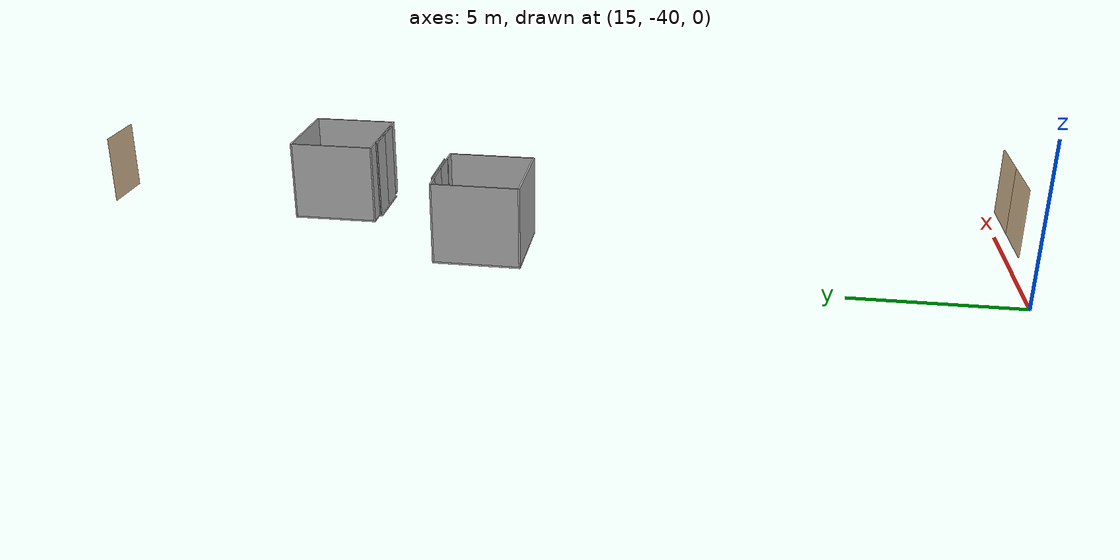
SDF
<sdf version="1.7">
 <world name="world">
  <scene><ambient>0.8 0.8 0.8 1.0</ambient><background>0 0 0</background><grid>false</grid></scene>
  <include><uri>model://sun</uri></include>
  <model name="L1_door3">
   <pose>20.334155710474544 -40.40725483879361 0.0 0 0 -3.137402798278724</pose>
   <link name="right">
    <pose>0.9069965354571369 0 1.11 0 0 0</pose>
    <visual name="right_visual">
     <geometry><box><size>1.8039930709142737 0.03 2.2</size></box></geometry>
     <material><ambient>0.5 0.25 0 0.6</ambient><diffuse>0.5 0.25 0 0.6</diffuse></material>
    </visual>
    <collision name="right_collision">
     <geometry><box><size>1.8039930709142737 0.03 2.2</size></box></geometry>
     <surface><contact><collide_bitmask>0x02</collide_bitmask></contact></surface>
    </collision>
    <inertial>
     <mass>50.0</mass>
     <inertia><ixx>20.17041666666667</ixx><iyy>33.726629166277974</iyy><izz>13.563712499611302</izz></inertia>
    </inertial>
   </link>
   <joint name="right_joint" type="prismatic">
    <parent>world</parent>
    <child>right</child>
    <axis>
     <xyz>1 0 0</xyz>
     <limit><lower>0.0</lower><upper>1.8139930709142738</upper><effort>500.0</effort></limit>
    </axis>
   </joint>
   <link name="left">
    <pose>-0.9069965354571369 0 1.11 0 0 0</pose>
    <visual name="left_visual">
     <geometry><box><size>1.8039930709142737 0.03 2.2</size></box></geometry>
     <material><ambient>0.5 0.25 0 0.6</ambient><diffuse>0.5 0.25 0 0.6</diffuse></material>
    </visual>
    <collision name="left_collision">
     <geometry><box><size>1.8039930709142737 0.03 2.2</size></box></geometry>
     <surface><contact><collide_bitmask>0x02</collide_bitmask></contact></surface>
    </collision>
    <inertial>
     <mass>50.0</mass>
     <inertia><ixx>20.17041666666667</ixx><iyy>33.726629166277974</iyy><izz>13.563712499611302</izz></inertia>
    </inertial>
   </link>
   <joint name="left_joint" type="prismatic">
    <parent>world</parent>
    <child>left</child>
    <axis>
     <xyz>1 0 0</xyz>
     <limit><lower>-1.8139930709142738</lower><upper>0.0</upper><effort>500.0</effort></limit>
    </axis>
   </joint>
   <plugin name="door" filename="libdoor.so">
    <v_max_door>0.2</v_max_door>
    <a_max_door>0.2</a_max_door>
    <a_nom_door>0.08</a_nom_door>
    <dx_min_door>0.001</dx_min_door>
    <f_max_door>100.0</f_max_door>
    <door name="L1_door3" type="DoubleSlidingDoor" left_joint_name="left_joint" right_joint_name="right_joint"/>
   </plugin>
  </model>
  <model name="L1_door4">
   <pose>19.549120677562087 -11.10939551168469 0.0 0 0 -0.009497018345977264</pose>
   <link name="right">
    <pose>0 0 1.11 0 0 0</pose>
    <visual name="right_visual">
     <geometry><box><size>1.5905993122484277 0.03 2.2</size></box></geometry>
     <material><ambient>0.5 0.25 0 0.6</ambient><diffuse>0.5 0.25 0 0.6</diffuse></material>
    </visual>
    <collision name="right_collision">
     <geometry><box><size>1.5905993122484277 0.03 2.2</size></box></geometry>
     <surface><contact><collide_bitmask>0x02</collide_bitmask></contact></surface>
    </collision>
    <inertial>
     <mass>50.0</mass>
     <inertia><ixx>20.17041666666667</ixx><iyy>30.70835905052155</iyy><izz>10.545442383854882</izz></inertia>
    </inertial>
   </link>
   <joint name="right_joint" type="revolute">
    <parent>world</parent>
    <child>right</child>
    <axis><xyz>0 0 1</xyz><limit><lower>0</lower><upper>1.57</upper></limit></axis>
    <pose>0.8002996561242138 0 0 0 0 0</pose>
   </joint>
   <plugin name="door" filename="libdoor.so">
    <v_max_door>0.5</v_max_door>
    <a_max_door>0.3</a_max_door>
    <a_nom_door>0.15</a_nom_door>
    <dx_min_door>0.01</dx_min_door>
    <f_max_door>500.0</f_max_door>
    <door name="L1_door4" type="SwingDoor" left_joint_name="empty_joint" right_joint_name="right_joint"/>
   </plugin>
  </model>
  <model name="ShaftDoor_Lift1_L1_lift1_door">
   <pose>19.766468308668816 -20.331265422387034 0.0 0 0 0.0</pose>
   <link name="right_door">
    <pose>0.425 0 1.25 0 0 0</pose>
    <visual name="right_door_visual">
     <geometry><box><size>0.85 0.03 2.5</size></box></geometry>
     <material>
      <ambient>0.5 0.5 0.5 1</ambient>
      <diffuse>0.7 0.7 0.7 1</diffuse>
      <specular>0.6 0.6 0.6 1</specular>
      <emissive>0.1 0.1 0.1 1</emissive>
     </material>
    </visual>
    <collision name="right_door_collision">
     <geometry><box><size>0.85 0.03 2.5</size></box></geometry>
     <surface><contact><collide_bitmask>0x02</collide_bitmask></contact></surface>
    </collision>
   </link>
   <joint name="right_joint" type="prismatic">
    <parent>world</parent>
    <child>right_door</child>
    <axis><xyz>1 0 0</xyz><limit><lower>0</lower><upper>0.85</upper></limit></axis>
   </joint>
   <link name="left_door">
    <pose>-0.425 0 1.25 0 0 0</pose>
    <visual name="left_door_visual">
     <geometry><box><size>0.85 0.03 2.5</size></box></geometry>
     <material>
      <ambient>0.5 0.5 0.5 1</ambient>
      <diffuse>0.7 0.7 0.7 1</diffuse>
      <specular>0.6 0.6 0.6 1</specular>
      <emissive>0.1 0.1 0.1 1</emissive>
     </material>
    </visual>
    <collision name="left_door_collision">
     <geometry><box><size>0.85 0.03 2.5</size></box></geometry>
     <surface><contact><collide_bitmask>0x02</collide_bitmask></contact></surface>
    </collision>
   </link>
   <joint name="left_joint" type="prismatic">
    <parent>world</parent>
    <child>left_door</child>
    <axis><xyz>1 0 0</xyz><limit><lower>-0.85</lower><upper>0</upper></limit></axis>
   </joint>
   <link name="ramp">
    <pose>0 0 -0.025 0 0 0</pose>
    <visual name="ramp_visual">
     <geometry><box><size>1.7 0.1 0.05</size></box></geometry>
     <material>
      <ambient>0.5 0.5 0.5 1</ambient>
      <diffuse>0.7 0.7 0.7 1</diffuse>
      <specular>0.6 0.6 0.6 1</specular>
      <emissive>0.1 0.1 0.1 1</emissive>
     </material>
    </visual>
    <collision name="ramp_collision">
     <geometry><box><size>1.7 0.1 0.05</size></box></geometry>
     <surface><contact><collide_bitmask>0x02</collide_bitmask></contact></surface>
    </collision>
   </link>
   <joint name="ramp_joint" type="fixed"><parent>world</parent><child>ramp</child></joint>
   <plugin name="door" filename="libdoor.so">
    <v_max_door>0.3</v_max_door>
    <a_max_door>0.2</a_max_door>
    <a_nom_door>0.1</a_nom_door>
    <dx_min_door>0.0001</dx_min_door>
    <f_max_door>35.0</f_max_door>
    <door left_joint_name="left_joint" name="ShaftDoor_Lift1_L1_lift1_door" right_joint_name="right_joint" type="DoubleSlidingDoor"/>
   </plugin>
  </model>
  <model name="Lift1">
   <link name="platform">
    <inertial>
     <mass>1200</mass>
     <inertia><ixx>729.2500000000001</ixx><iyy>729.2500000000001</iyy><izz>1458.0000000000002</izz></inertia>
    </inertial>
    <visual name="floor_visual">
     <pose>0 0 -0.025 0 0 0</pose>
     <geometry><box><size>2.7 2.7 0.05</size></box></geometry>
     <material>
      <ambient>0.5 0.5 0.5 1</ambient>
      <diffuse>0.7 0.7 0.7 1</diffuse>
      <specular>0.6 0.6 0.6 1</specular>
      <emissive>0.1 0.1 0.1 1</emissive>
     </material>
    </visual>
    <collision name="floor_collision">
     <pose>0 0 -0.025 0 0 0</pose>
     <geometry><box><size>2.7 2.7 0.05</size></box></geometry>
     <surface><contact><collide_bitmask>0x01</collide_bitmask></contact></surface>
    </collision>
    <visual name="frontwall1_visual">
     <pose>0.0 1.3250000000000002 1.25 0 0 0</pose>
     <geometry><box><size>2.7 0.05 2.5</size></box></geometry>
     <material>
      <ambient>0.5 0.5 0.5 1</ambient>
      <diffuse>0.7 0.7 0.7 1</diffuse>
      <specular>0.6 0.6 0.6 1</specular>
      <emissive>0.1 0.1 0.1 1</emissive>
     </material>
    </visual>
    <collision name="frontwall1_collision">
     <pose>0.0 1.3250000000000002 1.25 0 0 0</pose>
     <geometry><box><size>2.7 0.05 2.5</size></box></geometry>
     <surface><contact><collide_bitmask>0x01</collide_bitmask></contact></surface>
    </collision>
    <visual name="backwall1_visual">
     <pose>-1.1 -1.3250000000000002 1.25 0 0 0</pose>
     <geometry><box><size>0.5000000000000001 0.05 2.5</size></box></geometry>
     <material>
      <ambient>0.5 0.5 0.5 1</ambient>
      <diffuse>0.7 0.7 0.7 1</diffuse>
      <specular>0.6 0.6 0.6 1</specular>
      <emissive>0.1 0.1 0.1 1</emissive>
     </material>
    </visual>
    <collision name="backwall1_collision">
     <pose>-1.1 -1.3250000000000002 1.25 0 0 0</pose>
     <geometry><box><size>0.5000000000000001 0.05 2.5</size></box></geometry>
     <surface><contact><collide_bitmask>0x01</collide_bitmask></contact></surface>
    </collision>
    <visual name="backwall2_visual">
     <pose>1.1 -1.3250000000000002 1.25 0 0 0</pose>
     <geometry><box><size>0.5000000000000001 0.05 2.5</size></box></geometry>
     <material>
      <ambient>0.5 0.5 0.5 1</ambient>
      <diffuse>0.7 0.7 0.7 1</diffuse>
      <specular>0.6 0.6 0.6 1</specular>
      <emissive>0.1 0.1 0.1 1</emissive>
     </material>
    </visual>
    <collision name="backwall2_collision">
     <pose>1.1 -1.3250000000000002 1.25 0 0 0</pose>
     <geometry><box><size>0.5000000000000001 0.05 2.5</size></box></geometry>
     <surface><contact><collide_bitmask>0x01</collide_bitmask></contact></surface>
    </collision>
    <visual name="leftwall1_visual">
     <pose>-1.3250000000000002 0.0 1.25 0 0 1.5707963267948966</pose>
     <geometry><box><size>2.6 0.05 2.5</size></box></geometry>
     <material>
      <ambient>0.5 0.5 0.5 1</ambient>
      <diffuse>0.7 0.7 0.7 1</diffuse>
      <specular>0.6 0.6 0.6 1</specular>
      <emissive>0.1 0.1 0.1 1</emissive>
     </material>
    </visual>
    <collision name="leftwall1_collision">
     <pose>-1.3250000000000002 0.0 1.25 0 0 1.5707963267948966</pose>
     <geometry><box><size>2.6 0.05 2.5</size></box></geometry>
     <surface><contact><collide_bitmask>0x01</collide_bitmask></contact></surface>
    </collision>
    <visual name="rightwall1_visual">
     <pose>1.3250000000000002 0.0 1.25 0 0 1.5707963267948966</pose>
     <geometry><box><size>2.6 0.05 2.5</size></box></geometry>
     <material>
      <ambient>0.5 0.5 0.5 1</ambient>
      <diffuse>0.7 0.7 0.7 1</diffuse>
      <specular>0.6 0.6 0.6 1</specular>
      <emissive>0.1 0.1 0.1 1</emissive>
     </material>
    </visual>
    <collision name="rightwall1_collision">
     <pose>1.3250000000000002 0.0 1.25 0 0 1.5707963267948966</pose>
     <geometry><box><size>2.6 0.05 2.5</size></box></geometry>
     <surface><contact><collide_bitmask>0x01</collide_bitmask></contact></surface>
    </collision>
   </link>
   <joint name="cabin_joint" type="prismatic">
    <parent>world</parent>
    <child>platform</child>
    <axis><xyz>0 0 1</xyz></axis>
   </joint>
   <model name="CabinDoor_Lift1_lift1_door">
    <pose>0.0 -1.3250000000000002 0 0 0 0.0</pose>
    <link name="right_door">
     <pose>0.425 0 1.25 0 0 0</pose>
     <visual name="right_door_visual">
      <geometry><box><size>0.85 0.03 2.5</size></box></geometry>
      <material>
       <ambient>0.5 0.5 0.5 1</ambient>
       <diffuse>0.7 0.7 0.7 1</diffuse>
       <specular>0.6 0.6 0.6 1</specular>
       <emissive>0.1 0.1 0.1 1</emissive>
      </material>
     </visual>
     <collision name="right_door_collision">
      <geometry><box><size>0.85 0.03 2.5</size></box></geometry>
      <surface><contact><collide_bitmask>0x02</collide_bitmask></contact></surface>
     </collision>
    </link>
    <joint name="right_joint" type="prismatic">
     <parent>platform</parent>
     <child>right_door</child>
     <axis><xyz>1 0 0</xyz><limit><lower>0</lower><upper>0.85</upper></limit></axis>
    </joint>
    <link name="left_door">
     <pose>-0.425 0 1.25 0 0 0</pose>
     <visual name="left_door_visual">
      <geometry><box><size>0.85 0.03 2.5</size></box></geometry>
      <material>
       <ambient>0.5 0.5 0.5 1</ambient>
       <diffuse>0.7 0.7 0.7 1</diffuse>
       <specular>0.6 0.6 0.6 1</specular>
       <emissive>0.1 0.1 0.1 1</emissive>
      </material>
     </visual>
     <collision name="left_door_collision">
      <geometry><box><size>0.85 0.03 2.5</size></box></geometry>
      <surface><contact><collide_bitmask>0x02</collide_bitmask></contact></surface>
     </collision>
    </link>
    <joint name="left_joint" type="prismatic">
     <parent>platform</parent>
     <child>left_door</child>
     <axis><xyz>1 0 0</xyz><limit><lower>-0.85</lower><upper>0</upper></limit></axis>
    </joint>
    <plugin name="door" filename="libdoor.so">
     <v_max_door>0.3</v_max_door>
     <a_max_door>0.2</a_max_door>
     <a_nom_door>0.1</a_nom_door>
     <dx_min_door>0.0001</dx_min_door>
     <f_max_door>35.0</f_max_door>
     <door left_joint_name="left_joint" name="CabinDoor_Lift1_lift1_door" right_joint_name="right_joint" type="DoubleSlidingDoor"/>
    </plugin>
   </model>
   <plugin name="lift" filename="liblift.so">
    <lift_name>Lift1</lift_name>
    <floor name="L1" elevation="0.0">
     <door_pair cabin_door="CabinDoor_Lift1_lift1_door" shaft_door="ShaftDoor_Lift1_L1_lift1_door"/>
    </floor>
    <initial_floor>L1</initial_floor>
    <v_max_cabin>2.0</v_max_cabin>
    <a_max_cabin>1.2</a_max_cabin>
    <a_nom_cabin>1.0</a_nom_cabin>
    <dx_min_cabin>0.001</dx_min_cabin>
    <f_max_cabin>25323.0</f_max_cabin>
    <cabin_joint_name>cabin_joint</cabin_joint_name>
   </plugin>
   <pose>19.766468308668816 -18.931265422387035 0 0 0 0.0</pose>
  </model>
  <model name="ShaftDoor_Lift2_L1_lift2_door">
   <pose>16.982458687729547 -22.82088370217165 0.0 0 0 0.0</pose>
   <link name="right_door">
    <pose>0.425 0 1.25 0 0 0</pose>
    <visual name="right_door_visual">
     <geometry><box><size>0.85 0.03 2.5</size></box></geometry>
     <material>
      <ambient>0.5 0.5 0.5 1</ambient>
      <diffuse>0.7 0.7 0.7 1</diffuse>
      <specular>0.6 0.6 0.6 1</specular>
      <emissive>0.1 0.1 0.1 1</emissive>
     </material>
    </visual>
    <collision name="right_door_collision">
     <geometry><box><size>0.85 0.03 2.5</size></box></geometry>
     <surface><contact><collide_bitmask>0x02</collide_bitmask></contact></surface>
    </collision>
   </link>
   <joint name="right_joint" type="prismatic">
    <parent>world</parent>
    <child>right_door</child>
    <axis><xyz>1 0 0</xyz><limit><lower>0</lower><upper>0.85</upper></limit></axis>
   </joint>
   <link name="left_door">
    <pose>-0.425 0 1.25 0 0 0</pose>
    <visual name="left_door_visual">
     <geometry><box><size>0.85 0.03 2.5</size></box></geometry>
     <material>
      <ambient>0.5 0.5 0.5 1</ambient>
      <diffuse>0.7 0.7 0.7 1</diffuse>
      <specular>0.6 0.6 0.6 1</specular>
      <emissive>0.1 0.1 0.1 1</emissive>
     </material>
    </visual>
    <collision name="left_door_collision">
     <geometry><box><size>0.85 0.03 2.5</size></box></geometry>
     <surface><contact><collide_bitmask>0x02</collide_bitmask></contact></surface>
    </collision>
   </link>
   <joint name="left_joint" type="prismatic">
    <parent>world</parent>
    <child>left_door</child>
    <axis><xyz>1 0 0</xyz><limit><lower>-0.85</lower><upper>0</upper></limit></axis>
   </joint>
   <link name="ramp">
    <pose>0 0 -0.025 0 0 0</pose>
    <visual name="ramp_visual">
     <geometry><box><size>1.7 0.1 0.05</size></box></geometry>
     <material>
      <ambient>0.5 0.5 0.5 1</ambient>
      <diffuse>0.7 0.7 0.7 1</diffuse>
      <specular>0.6 0.6 0.6 1</specular>
      <emissive>0.1 0.1 0.1 1</emissive>
     </material>
    </visual>
    <collision name="ramp_collision">
     <geometry><box><size>1.7 0.1 0.05</size></box></geometry>
     <surface><contact><collide_bitmask>0x02</collide_bitmask></contact></surface>
    </collision>
   </link>
   <joint name="ramp_joint" type="fixed"><parent>world</parent><child>ramp</child></joint>
   <plugin name="door" filename="libdoor.so">
    <v_max_door>0.3</v_max_door>
    <a_max_door>0.2</a_max_door>
    <a_nom_door>0.1</a_nom_door>
    <dx_min_door>0.0001</dx_min_door>
    <f_max_door>35.0</f_max_door>
    <door left_joint_name="left_joint" name="ShaftDoor_Lift2_L1_lift2_door" right_joint_name="right_joint" type="DoubleSlidingDoor"/>
   </plugin>
  </model>
  <model name="Lift2">
   <link name="platform">
    <inertial>
     <mass>1200</mass>
     <inertia><ixx>729.2500000000001</ixx><iyy>729.2500000000001</iyy><izz>1458.0000000000002</izz></inertia>
    </inertial>
    <visual name="floor_visual">
     <pose>0 0 -0.025 0 0 0</pose>
     <geometry><box><size>2.7 2.7 0.05</size></box></geometry>
     <material>
      <ambient>0.5 0.5 0.5 1</ambient>
      <diffuse>0.7 0.7 0.7 1</diffuse>
      <specular>0.6 0.6 0.6 1</specular>
      <emissive>0.1 0.1 0.1 1</emissive>
     </material>
    </visual>
    <collision name="floor_collision">
     <pose>0 0 -0.025 0 0 0</pose>
     <geometry><box><size>2.7 2.7 0.05</size></box></geometry>
     <surface><contact><collide_bitmask>0x01</collide_bitmask></contact></surface>
    </collision>
    <visual name="frontwall1_visual">
     <pose>-1.1 1.3250000000000002 1.25 0 0 0</pose>
     <geometry><box><size>0.5000000000000001 0.05 2.5</size></box></geometry>
     <material>
      <ambient>0.5 0.5 0.5 1</ambient>
      <diffuse>0.7 0.7 0.7 1</diffuse>
      <specular>0.6 0.6 0.6 1</specular>
      <emissive>0.1 0.1 0.1 1</emissive>
     </material>
    </visual>
    <collision name="frontwall1_collision">
     <pose>-1.1 1.3250000000000002 1.25 0 0 0</pose>
     <geometry><box><size>0.5000000000000001 0.05 2.5</size></box></geometry>
     <surface><contact><collide_bitmask>0x01</collide_bitmask></contact></surface>
    </collision>
    <visual name="frontwall2_visual">
     <pose>1.1 1.3250000000000002 1.25 0 0 0</pose>
     <geometry><box><size>0.5000000000000001 0.05 2.5</size></box></geometry>
     <material>
      <ambient>0.5 0.5 0.5 1</ambient>
      <diffuse>0.7 0.7 0.7 1</diffuse>
      <specular>0.6 0.6 0.6 1</specular>
      <emissive>0.1 0.1 0.1 1</emissive>
     </material>
    </visual>
    <collision name="frontwall2_collision">
     <pose>1.1 1.3250000000000002 1.25 0 0 0</pose>
     <geometry><box><size>0.5000000000000001 0.05 2.5</size></box></geometry>
     <surface><contact><collide_bitmask>0x01</collide_bitmask></contact></surface>
    </collision>
    <visual name="backwall1_visual">
     <pose>0.0 -1.3250000000000002 1.25 0 0 0</pose>
     <geometry><box><size>2.7 0.05 2.5</size></box></geometry>
     <material>
      <ambient>0.5 0.5 0.5 1</ambient>
      <diffuse>0.7 0.7 0.7 1</diffuse>
      <specular>0.6 0.6 0.6 1</specular>
      <emissive>0.1 0.1 0.1 1</emissive>
     </material>
    </visual>
    <collision name="backwall1_collision">
     <pose>0.0 -1.3250000000000002 1.25 0 0 0</pose>
     <geometry><box><size>2.7 0.05 2.5</size></box></geometry>
     <surface><contact><collide_bitmask>0x01</collide_bitmask></contact></surface>
    </collision>
    <visual name="leftwall1_visual">
     <pose>-1.3250000000000002 0.0 1.25 0 0 1.5707963267948966</pose>
     <geometry><box><size>2.6 0.05 2.5</size></box></geometry>
     <material>
      <ambient>0.5 0.5 0.5 1</ambient>
      <diffuse>0.7 0.7 0.7 1</diffuse>
      <specular>0.6 0.6 0.6 1</specular>
      <emissive>0.1 0.1 0.1 1</emissive>
     </material>
    </visual>
    <collision name="leftwall1_collision">
     <pose>-1.3250000000000002 0.0 1.25 0 0 1.5707963267948966</pose>
     <geometry><box><size>2.6 0.05 2.5</size></box></geometry>
     <surface><contact><collide_bitmask>0x01</collide_bitmask></contact></surface>
    </collision>
    <visual name="rightwall1_visual">
     <pose>1.3250000000000002 0.0 1.25 0 0 1.5707963267948966</pose>
     <geometry><box><size>2.6 0.05 2.5</size></box></geometry>
     <material>
      <ambient>0.5 0.5 0.5 1</ambient>
      <diffuse>0.7 0.7 0.7 1</diffuse>
      <specular>0.6 0.6 0.6 1</specular>
      <emissive>0.1 0.1 0.1 1</emissive>
     </material>
    </visual>
    <collision name="rightwall1_collision">
     <pose>1.3250000000000002 0.0 1.25 0 0 1.5707963267948966</pose>
     <geometry><box><size>2.6 0.05 2.5</size></box></geometry>
     <surface><contact><collide_bitmask>0x01</collide_bitmask></contact></surface>
    </collision>
   </link>
   <joint name="cabin_joint" type="prismatic">
    <parent>world</parent>
    <child>platform</child>
    <axis><xyz>0 0 1</xyz></axis>
   </joint>
   <model name="CabinDoor_Lift2_lift2_door">
    <pose>0.0 1.3250000000000002 0 0 0 0.0</pose>
    <link name="right_door">
     <pose>0.425 0 1.25 0 0 0</pose>
     <visual name="right_door_visual">
      <geometry><box><size>0.85 0.03 2.5</size></box></geometry>
      <material>
       <ambient>0.5 0.5 0.5 1</ambient>
       <diffuse>0.7 0.7 0.7 1</diffuse>
       <specular>0.6 0.6 0.6 1</specular>
       <emissive>0.1 0.1 0.1 1</emissive>
      </material>
     </visual>
     <collision name="right_door_collision">
      <geometry><box><size>0.85 0.03 2.5</size></box></geometry>
      <surface><contact><collide_bitmask>0x02</collide_bitmask></contact></surface>
     </collision>
    </link>
    <joint name="right_joint" type="prismatic">
     <parent>platform</parent>
     <child>right_door</child>
     <axis><xyz>1 0 0</xyz><limit><lower>0</lower><upper>0.85</upper></limit></axis>
    </joint>
    <link name="left_door">
     <pose>-0.425 0 1.25 0 0 0</pose>
     <visual name="left_door_visual">
      <geometry><box><size>0.85 0.03 2.5</size></box></geometry>
      <material>
       <ambient>0.5 0.5 0.5 1</ambient>
       <diffuse>0.7 0.7 0.7 1</diffuse>
       <specular>0.6 0.6 0.6 1</specular>
       <emissive>0.1 0.1 0.1 1</emissive>
      </material>
     </visual>
     <collision name="left_door_collision">
      <geometry><box><size>0.85 0.03 2.5</size></box></geometry>
      <surface><contact><collide_bitmask>0x02</collide_bitmask></contact></surface>
     </collision>
    </link>
    <joint name="left_joint" type="prismatic">
     <parent>platform</parent>
     <child>left_door</child>
     <axis><xyz>1 0 0</xyz><limit><lower>-0.85</lower><upper>0</upper></limit></axis>
    </joint>
    <plugin name="door" filename="libdoor.so">
     <v_max_door>0.3</v_max_door>
     <a_max_door>0.2</a_max_door>
     <a_nom_door>0.1</a_nom_door>
     <dx_min_door>0.0001</dx_min_door>
     <f_max_door>35.0</f_max_door>
     <door left_joint_name="left_joint" name="CabinDoor_Lift2_lift2_door" right_joint_name="right_joint" type="DoubleSlidingDoor"/>
    </plugin>
   </model>
   <plugin name="lift" filename="liblift.so">
    <lift_name>Lift2</lift_name>
    <floor name="L1" elevation="0.0">
     <door_pair cabin_door="CabinDoor_Lift2_lift2_door" shaft_door="ShaftDoor_Lift2_L1_lift2_door"/>
    </floor>
    <initial_floor>L1</initial_floor>
    <v_max_cabin>2.0</v_max_cabin>
    <a_max_cabin>1.2</a_max_cabin>
    <a_nom_cabin>1.0</a_nom_cabin>
    <dx_min_cabin>0.001</dx_min_cabin>
    <f_max_cabin>25323.0</f_max_cabin>
    <cabin_joint_name>cabin_joint</cabin_joint_name>
   </plugin>
   <pose>16.982458687729547 -24.220883702171648 0 0 0 0.0</pose>
  </model>
  <rmf_charger_waypoints name="charger_waypoints">
   <rmf_vertex name="cleanerbot_charger2" x="29.239395125069194" y="-27.6631445578858" level="L1"/>
   <rmf_vertex name="cleanerbot_charger1" x="26.364960871641816" y="-27.752566946910367" level="L1"/>
   <rmf_vertex name="tinybot_charger" x="23.541641034854884" y="-27.420434599132314" level="L1"/>
   <rmf_vertex name="deliverybot_charger" x="14.55719654654451" y="-38.97630173372704" level="L1"/>
  </rmf_charger_waypoints>
 </world>
</sdf>
